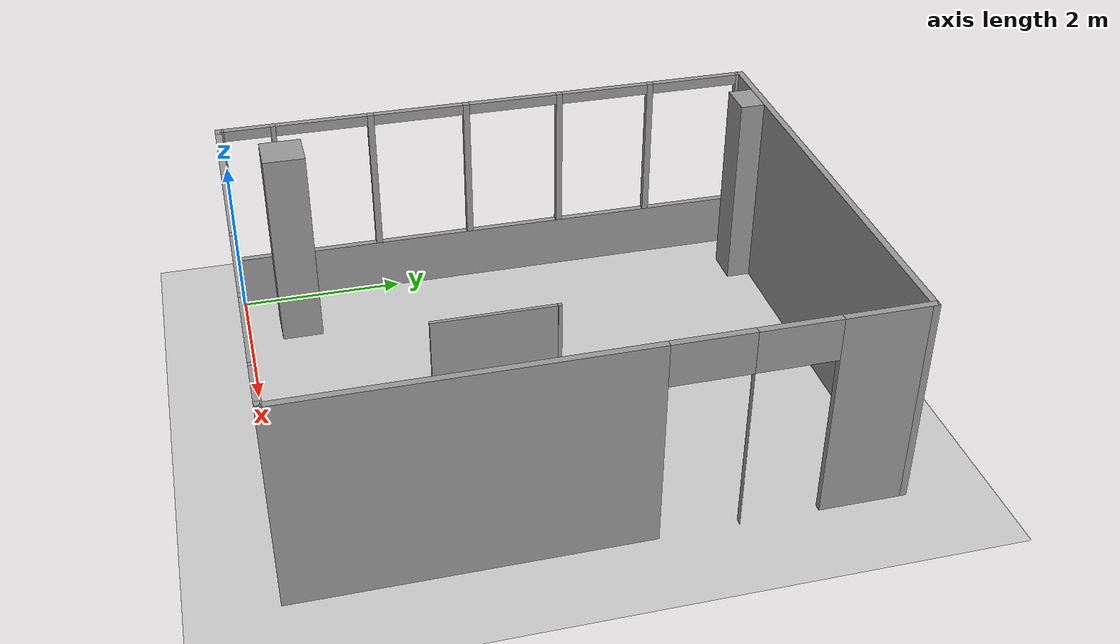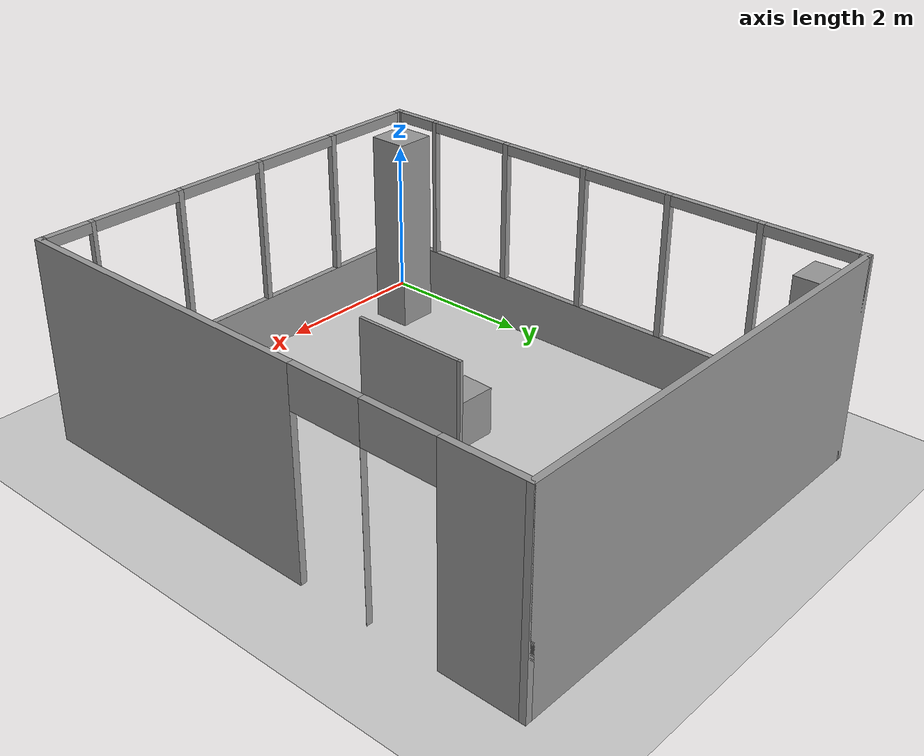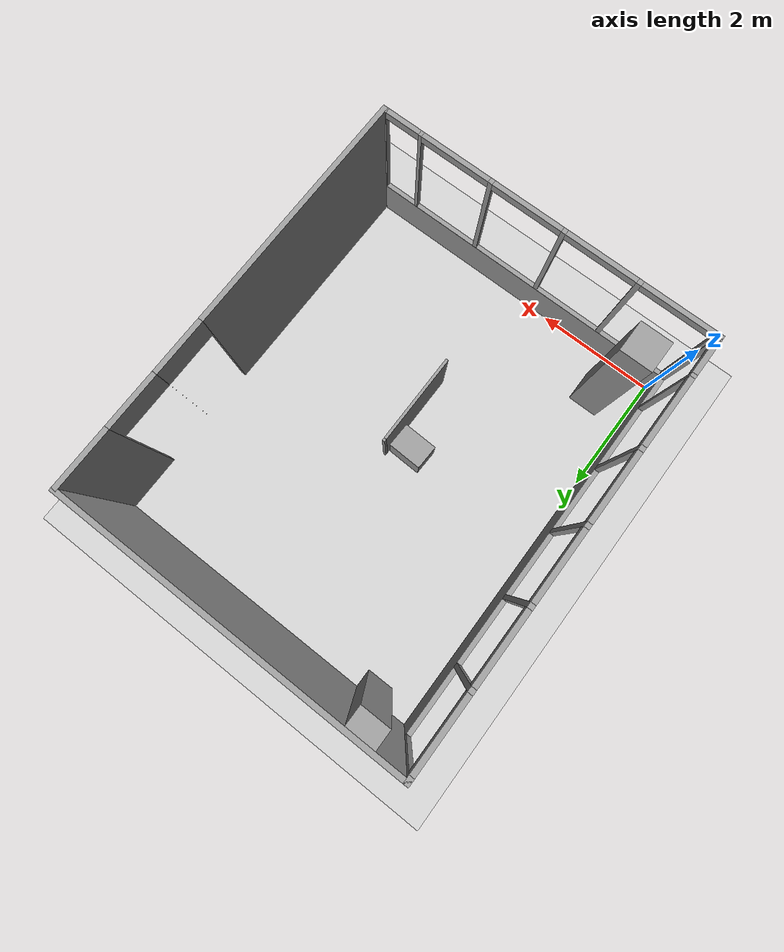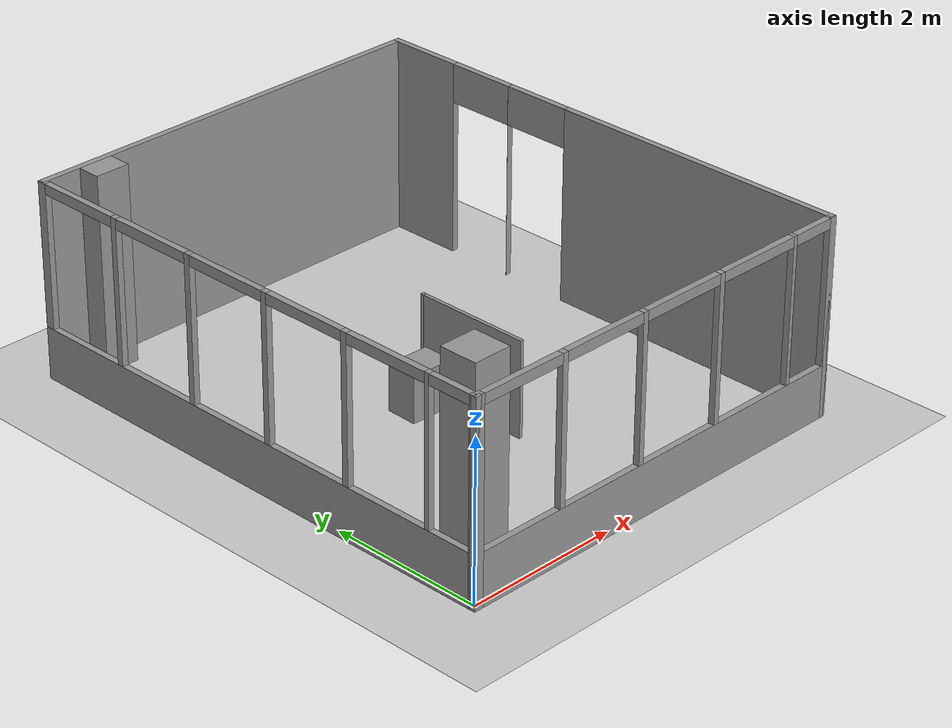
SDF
<sdf version="1.6">
 <world name="default">
  <model name="ground_plane">
   <static>1</static>
   <link name="link">
    <collision name="collision">
     <geometry><plane><normal>0 0 1</normal><size>100 100</size></plane></geometry>
     <surface><friction><ode><mu>100</mu><mu2>50</mu2></ode></friction></surface>
    </collision>
    <visual name="visual">
     <cast_shadows>0</cast_shadows>
     <geometry><plane><normal>0 0 1</normal><size>100 100</size></plane></geometry>
     <material>
      <script><uri>file://media/materials/scripts/gazebo.material</uri><name>Gazebo/Grey</name></script>
     </material>
    </visual>
   </link>
  </model>
  <model name="L8401_room">
   <pose>2.69658 3.29747 0 0 -0 0</pose>
   <link name="Wall_10">
    <pose>2.74 0 0 0 -0 1.5708</pose>
    <visual name="Wall_10_Visual_0">
     <pose>-1.41 0 1.25 0 -0 0</pose>
     <geometry><box><size>3.94 0.08 2.5</size></box></geometry>
     <material>
      <script><uri>file://media/materials/scripts/gazebo.material</uri><name>Gazebo/Grey</name></script>
      <ambient>1 1 1 1</ambient>
     </material>
    </visual>
    <collision name="Wall_10_Collision_0">
     <geometry><box><size>3.94 0.08 2.5</size></box></geometry>
     <pose>-1.41 0 1.25 0 -0 0</pose>
    </collision>
    <visual name="Wall_10_Visual_1">
     <pose>1.46 0 1.25 0 -0 0</pose>
     <geometry><box><size>0.001 0.08 2.5</size></box></geometry>
     <material>
      <script><uri>file://media/materials/scripts/gazebo.material</uri><name>Gazebo/Grey</name></script>
      <ambient>1 1 1 1</ambient>
     </material>
    </visual>
    <collision name="Wall_10_Collision_1">
     <geometry><box><size>0.001 0.08 2.5</size></box></geometry>
     <pose>1.46 0 1.25 0 -0 0</pose>
    </collision>
    <visual name="Wall_10_Visual_2">
     <pose>2.87 0 1.25 0 -0 0</pose>
     <geometry><box><size>1.02 0.08 2.5</size></box></geometry>
     <material>
      <script><uri>file://media/materials/scripts/gazebo.material</uri><name>Gazebo/Grey</name></script>
      <ambient>1 1 1 1</ambient>
     </material>
    </visual>
    <collision name="Wall_10_Collision_2">
     <geometry><box><size>1.02 0.08 2.5</size></box></geometry>
     <pose>2.87 0 1.25 0 -0 0</pose>
    </collision>
    <visual name="Wall_10_Visual_3">
     <pose>1.01 0 2.25 0 -0 0</pose>
     <geometry><box><size>0.9 0.08 0.5</size></box></geometry>
     <material>
      <script><uri>file://media/materials/scripts/gazebo.material</uri><name>Gazebo/Grey</name></script>
      <ambient>1 1 1 1</ambient>
     </material>
    </visual>
    <collision name="Wall_10_Collision_3">
     <geometry><box><size>0.9 0.08 0.5</size></box></geometry>
     <pose>1.01 0 2.25 0 -0 0</pose>
    </collision>
    <visual name="Wall_10_Visual_4">
     <pose>1.91 0 2.25 0 -0 0</pose>
     <geometry><box><size>0.9 0.08 0.5</size></box></geometry>
     <material>
      <script><uri>file://media/materials/scripts/gazebo.material</uri><name>Gazebo/Grey</name></script>
      <ambient>1 1 1 1</ambient>
     </material>
    </visual>
    <collision name="Wall_10_Collision_4">
     <geometry><box><size>0.9 0.08 0.5</size></box></geometry>
     <pose>1.91 0 2.25 0 -0 0</pose>
    </collision>
   </link>
   <link name="Wall_12">
    <collision name="Wall_12_Collision">
     <geometry><box><size>5.56 0.08 2.5</size></box></geometry>
     <pose>0 0 1.25 0 -0 0</pose>
    </collision>
    <visual name="Wall_12_Visual">
     <pose>0 0 1.25 0 -0 0</pose>
     <geometry><box><size>5.56 0.08 2.5</size></box></geometry>
     <material>
      <script><uri>file://media/materials/scripts/gazebo.material</uri><name>Gazebo/Grey</name></script>
      <ambient>1 1 1 1</ambient>
     </material>
    </visual>
    <pose>0 3.34 0 0 -0 0</pose>
   </link>
   <link name="Wall_22">
    <collision name="Wall_22_Collision">
     <geometry><box><size>0.5 0.5 2.5</size></box></geometry>
     <pose>0 0 1.25 0 -0 0</pose>
    </collision>
    <visual name="Wall_22_Visual">
     <pose>0 0 1.25 0 -0 0</pose>
     <geometry><box><size>0.5 0.5 2.5</size></box></geometry>
     <material>
      <script><uri>file://media/materials/scripts/gazebo.material</uri><name>Gazebo/Grey</name></script>
      <ambient>1 1 1 1</ambient>
     </material>
    </visual>
    <pose>-2.05 -2.65 0 0 -0 0</pose>
   </link>
   <link name="Wall_24">
    <collision name="Wall_24_Collision">
     <geometry><box><size>0.45 0.3 2.5</size></box></geometry>
     <pose>0 0 1.25 0 -0 0</pose>
    </collision>
    <visual name="Wall_24_Visual">
     <pose>0 0 1.25 0 -0 0</pose>
     <geometry><box><size>0.45 0.3 2.5</size></box></geometry>
     <material>
      <script><uri>file://media/materials/scripts/gazebo.material</uri><name>Gazebo/Grey</name></script>
      <ambient>1 1 1 1</ambient>
     </material>
    </visual>
    <pose>-2.025 3.15 0 0 -0 0</pose>
   </link>
   <link name="Wall_4">
    <pose>0 -3.34 0 0 -0 0</pose>
    <visual name="Wall_4_Visual_0">
     <pose>-2.72 0 1.25 0 -0 0</pose>
     <geometry><box><size>0.12 0.08 2.5</size></box></geometry>
     <material>
      <script><uri>file://media/materials/scripts/gazebo.material</uri><name>Gazebo/Grey</name></script>
      <ambient>1 1 1 1</ambient>
     </material>
    </visual>
    <collision name="Wall_4_Collision_0">
     <geometry><box><size>0.12 0.08 2.5</size></box></geometry>
     <pose>-2.72 0 1.25 0 -0 0</pose>
    </collision>
    <visual name="Wall_4_Visual_1">
     <pose>0.06 0 0.335 0 -0 0</pose>
     <geometry><box><size>5.44 0.08 0.67</size></box></geometry>
     <material>
      <script><uri>file://media/materials/scripts/gazebo.material</uri><name>Gazebo/Grey</name></script>
      <ambient>1 1 1 1</ambient>
     </material>
    </visual>
    <collision name="Wall_4_Collision_1">
     <geometry><box><size>5.44 0.08 0.67</size></box></geometry>
     <pose>0.06 0 0.335 0 -0 0</pose>
    </collision>
    <visual name="Wall_4_Visual_2">
     <pose>-1.5025 0 1.585 0 -0 0</pose>
     <geometry><box><size>0.075 0.08 1.83</size></box></geometry>
     <material>
      <script><uri>file://media/materials/scripts/gazebo.material</uri><name>Gazebo/Grey</name></script>
      <ambient>1 1 1 1</ambient>
     </material>
    </visual>
    <collision name="Wall_4_Collision_2">
     <geometry><box><size>0.075 0.08 1.83</size></box></geometry>
     <pose>-1.5025 0 1.585 0 -0 0</pose>
    </collision>
    <visual name="Wall_4_Visual_3">
     <pose>-0.3 0 1.585 0 -0 0</pose>
     <geometry><box><size>0.07 0.08 1.83</size></box></geometry>
     <material>
      <script><uri>file://media/materials/scripts/gazebo.material</uri><name>Gazebo/Grey</name></script>
      <ambient>1 1 1 1</ambient>
     </material>
    </visual>
    <collision name="Wall_4_Collision_3">
     <geometry><box><size>0.07 0.08 1.83</size></box></geometry>
     <pose>-0.3 0 1.585 0 -0 0</pose>
    </collision>
    <visual name="Wall_4_Visual_4">
     <pose>0.900568 0 1.585 0 -0 0</pose>
     <geometry><box><size>0.071135 0.08 1.83</size></box></geometry>
     <material>
      <script><uri>file://media/materials/scripts/gazebo.material</uri><name>Gazebo/Grey</name></script>
      <ambient>1 1 1 1</ambient>
     </material>
    </visual>
    <collision name="Wall_4_Collision_4">
     <geometry><box><size>0.071135 0.08 1.83</size></box></geometry>
     <pose>0.900568 0 1.585 0 -0 0</pose>
    </collision>
    <visual name="Wall_4_Visual_5">
     <pose>2.09307 0 1.585 0 -0 0</pose>
     <geometry><box><size>0.053865 0.08 1.83</size></box></geometry>
     <material>
      <script><uri>file://media/materials/scripts/gazebo.material</uri><name>Gazebo/Grey</name></script>
      <ambient>1 1 1 1</ambient>
     </material>
    </visual>
    <collision name="Wall_4_Collision_5">
     <geometry><box><size>0.053865 0.08 1.83</size></box></geometry>
     <pose>2.09307 0 1.585 0 -0 0</pose>
    </collision>
    <visual name="Wall_4_Visual_6">
     <pose>2.73 0 1.585 0 -0 0</pose>
     <geometry><box><size>0.1 0.08 1.83</size></box></geometry>
     <material>
      <script><uri>file://media/materials/scripts/gazebo.material</uri><name>Gazebo/Grey</name></script>
      <ambient>1 1 1 1</ambient>
     </material>
    </visual>
    <collision name="Wall_4_Collision_6">
     <geometry><box><size>0.1 0.08 1.83</size></box></geometry>
     <pose>2.73 0 1.585 0 -0 0</pose>
    </collision>
    <visual name="Wall_4_Visual_7">
     <pose>-0.9 0 0.67 0 -0 0</pose>
     <geometry><box><size>1.13 0.08 0.001</size></box></geometry>
     <material>
      <script><uri>file://media/materials/scripts/gazebo.material</uri><name>Gazebo/Grey</name></script>
      <ambient>1 1 1 1</ambient>
     </material>
    </visual>
    <collision name="Wall_4_Collision_7">
     <geometry><box><size>1.13 0.08 0.001</size></box></geometry>
     <pose>-0.9 0 0.67 0 -0 0</pose>
    </collision>
    <visual name="Wall_4_Visual_8">
     <pose>0.3 0 0.67 0 -0 0</pose>
     <geometry><box><size>1.13 0.08 0.001</size></box></geometry>
     <material>
      <script><uri>file://media/materials/scripts/gazebo.material</uri><name>Gazebo/Grey</name></script>
      <ambient>1 1 1 1</ambient>
     </material>
    </visual>
    <collision name="Wall_4_Collision_8">
     <geometry><box><size>1.13 0.08 0.001</size></box></geometry>
     <pose>0.3 0 0.67 0 -0 0</pose>
    </collision>
    <visual name="Wall_4_Visual_9">
     <pose>1.50114 0 0.67 0 -0 0</pose>
     <geometry><box><size>1.13 0.08 0.001</size></box></geometry>
     <material>
      <script><uri>file://media/materials/scripts/gazebo.material</uri><name>Gazebo/Grey</name></script>
      <ambient>1 1 1 1</ambient>
     </material>
    </visual>
    <collision name="Wall_4_Collision_9">
     <geometry><box><size>1.13 0.08 0.001</size></box></geometry>
     <pose>1.50114 0 0.67 0 -0 0</pose>
    </collision>
    <visual name="Wall_4_Visual_10">
     <pose>2.4 0 0.67 0 -0 0</pose>
     <geometry><box><size>0.56 0.08 0.001</size></box></geometry>
     <material>
      <script><uri>file://media/materials/scripts/gazebo.material</uri><name>Gazebo/Grey</name></script>
      <ambient>1 1 1 1</ambient>
     </material>
    </visual>
    <collision name="Wall_4_Collision_10">
     <geometry><box><size>0.56 0.08 0.001</size></box></geometry>
     <pose>2.4 0 0.67 0 -0 0</pose>
    </collision>
    <visual name="Wall_4_Visual_11">
     <pose>-2.1 0 2.435 0 -0 0</pose>
     <geometry><box><size>1.12 0.08 0.13</size></box></geometry>
     <material>
      <script><uri>file://media/materials/scripts/gazebo.material</uri><name>Gazebo/Grey</name></script>
      <ambient>1 1 1 1</ambient>
     </material>
    </visual>
    <collision name="Wall_4_Collision_11">
     <geometry><box><size>1.12 0.08 0.13</size></box></geometry>
     <pose>-2.1 0 2.435 0 -0 0</pose>
    </collision>
    <visual name="Wall_4_Visual_12">
     <pose>-0.9 0 2.435 0 -0 0</pose>
     <geometry><box><size>1.13 0.08 0.13</size></box></geometry>
     <material>
      <script><uri>file://media/materials/scripts/gazebo.material</uri><name>Gazebo/Grey</name></script>
      <ambient>1 1 1 1</ambient>
     </material>
    </visual>
    <collision name="Wall_4_Collision_12">
     <geometry><box><size>1.13 0.08 0.13</size></box></geometry>
     <pose>-0.9 0 2.435 0 -0 0</pose>
    </collision>
    <visual name="Wall_4_Visual_13">
     <pose>0.3 0 2.435 0 -0 0</pose>
     <geometry><box><size>1.13 0.08 0.13</size></box></geometry>
     <material>
      <script><uri>file://media/materials/scripts/gazebo.material</uri><name>Gazebo/Grey</name></script>
      <ambient>1 1 1 1</ambient>
     </material>
    </visual>
    <collision name="Wall_4_Collision_13">
     <geometry><box><size>1.13 0.08 0.13</size></box></geometry>
     <pose>0.3 0 2.435 0 -0 0</pose>
    </collision>
    <visual name="Wall_4_Visual_14">
     <pose>1.50114 0 2.435 0 -0 0</pose>
     <geometry><box><size>1.13 0.08 0.13</size></box></geometry>
     <material>
      <script><uri>file://media/materials/scripts/gazebo.material</uri><name>Gazebo/Grey</name></script>
      <ambient>1 1 1 1</ambient>
     </material>
    </visual>
    <collision name="Wall_4_Collision_14">
     <geometry><box><size>1.13 0.08 0.13</size></box></geometry>
     <pose>1.50114 0 2.435 0 -0 0</pose>
    </collision>
    <visual name="Wall_4_Visual_15">
     <pose>2.4 0 2.435 0 -0 0</pose>
     <geometry><box><size>0.56 0.08 0.13</size></box></geometry>
     <material>
      <script><uri>file://media/materials/scripts/gazebo.material</uri><name>Gazebo/Grey</name></script>
      <ambient>1 1 1 1</ambient>
     </material>
    </visual>
    <collision name="Wall_4_Collision_15">
     <geometry><box><size>0.56 0.08 0.13</size></box></geometry>
     <pose>2.4 0 2.435 0 -0 0</pose>
    </collision>
   </link>
   <link name="Wall_6">
    <pose>-2.74 0 0 0 -0 1.5708</pose>
    <visual name="Wall_6_Visual_0">
     <pose>-3.33 0 1.25 0 -0 0</pose>
     <geometry><box><size>0.1 0.08 2.5</size></box></geometry>
     <material>
      <script><uri>file://media/materials/scripts/gazebo.material</uri><name>Gazebo/Grey</name></script>
      <ambient>1 1 1 1</ambient>
     </material>
    </visual>
    <collision name="Wall_6_Collision_0">
     <geometry><box><size>0.1 0.08 2.5</size></box></geometry>
     <pose>-3.33 0 1.25 0 -0 0</pose>
    </collision>
    <visual name="Wall_6_Visual_1">
     <pose>0.05 0 0.335 0 -0 0</pose>
     <geometry><box><size>6.66 0.08 0.67</size></box></geometry>
     <material>
      <script><uri>file://media/materials/scripts/gazebo.material</uri><name>Gazebo/Grey</name></script>
      <ambient>1 1 1 1</ambient>
     </material>
    </visual>
    <collision name="Wall_6_Collision_1">
     <geometry><box><size>6.66 0.08 0.67</size></box></geometry>
     <pose>0.05 0 0.335 0 -0 0</pose>
    </collision>
    <visual name="Wall_6_Visual_2">
     <pose>-2.69 0 1.585 0 -0 0</pose>
     <geometry><box><size>0.06 0.08 1.83</size></box></geometry>
     <material>
      <script><uri>file://media/materials/scripts/gazebo.material</uri><name>Gazebo/Grey</name></script>
      <ambient>1 1 1 1</ambient>
     </material>
    </visual>
    <collision name="Wall_6_Collision_2">
     <geometry><box><size>0.06 0.08 1.83</size></box></geometry>
     <pose>-2.69 0 1.585 0 -0 0</pose>
    </collision>
    <visual name="Wall_6_Visual_3">
     <pose>-1.5 0 1.585 0 -0 0</pose>
     <geometry><box><size>0.08 0.08 1.83</size></box></geometry>
     <material>
      <script><uri>file://media/materials/scripts/gazebo.material</uri><name>Gazebo/Grey</name></script>
      <ambient>1 1 1 1</ambient>
     </material>
    </visual>
    <collision name="Wall_6_Collision_3">
     <geometry><box><size>0.08 0.08 1.83</size></box></geometry>
     <pose>-1.5 0 1.585 0 -0 0</pose>
    </collision>
    <visual name="Wall_6_Visual_4">
     <pose>-0.3 0 1.585 0 -0 0</pose>
     <geometry><box><size>0.08 0.08 1.83</size></box></geometry>
     <material>
      <script><uri>file://media/materials/scripts/gazebo.material</uri><name>Gazebo/Grey</name></script>
      <ambient>1 1 1 1</ambient>
     </material>
    </visual>
    <collision name="Wall_6_Collision_4">
     <geometry><box><size>0.08 0.08 1.83</size></box></geometry>
     <pose>-0.3 0 1.585 0 -0 0</pose>
    </collision>
    <visual name="Wall_6_Visual_5">
     <pose>0.9 0 1.585 0 -0 0</pose>
     <geometry><box><size>0.08 0.08 1.83</size></box></geometry>
     <material>
      <script><uri>file://media/materials/scripts/gazebo.material</uri><name>Gazebo/Grey</name></script>
      <ambient>1 1 1 1</ambient>
     </material>
    </visual>
    <collision name="Wall_6_Collision_5">
     <geometry><box><size>0.08 0.08 1.83</size></box></geometry>
     <pose>0.9 0 1.585 0 -0 0</pose>
    </collision>
    <visual name="Wall_6_Visual_6">
     <pose>2.1 0 1.585 0 -0 0</pose>
     <geometry><box><size>0.08 0.08 1.83</size></box></geometry>
     <material>
      <script><uri>file://media/materials/scripts/gazebo.material</uri><name>Gazebo/Grey</name></script>
      <ambient>1 1 1 1</ambient>
     </material>
    </visual>
    <collision name="Wall_6_Collision_6">
     <geometry><box><size>0.08 0.08 1.83</size></box></geometry>
     <pose>2.1 0 1.585 0 -0 0</pose>
    </collision>
    <visual name="Wall_6_Visual_7">
     <pose>3.32 0 1.585 0 -0 0</pose>
     <geometry><box><size>0.12 0.08 1.83</size></box></geometry>
     <material>
      <script><uri>file://media/materials/scripts/gazebo.material</uri><name>Gazebo/Grey</name></script>
      <ambient>1 1 1 1</ambient>
     </material>
    </visual>
    <collision name="Wall_6_Collision_7">
     <geometry><box><size>0.12 0.08 1.83</size></box></geometry>
     <pose>3.32 0 1.585 0 -0 0</pose>
    </collision>
    <visual name="Wall_6_Visual_8">
     <pose>-3 0 2.435 0 -0 0</pose>
     <geometry><box><size>0.56 0.08 0.13</size></box></geometry>
     <material>
      <script><uri>file://media/materials/scripts/gazebo.material</uri><name>Gazebo/Grey</name></script>
      <ambient>1 1 1 1</ambient>
     </material>
    </visual>
    <collision name="Wall_6_Collision_8">
     <geometry><box><size>0.56 0.08 0.13</size></box></geometry>
     <pose>-3 0 2.435 0 -0 0</pose>
    </collision>
    <visual name="Wall_6_Visual_9">
     <pose>-2.1 0 2.435 0 -0 0</pose>
     <geometry><box><size>1.12 0.08 0.13</size></box></geometry>
     <material>
      <script><uri>file://media/materials/scripts/gazebo.material</uri><name>Gazebo/Grey</name></script>
      <ambient>1 1 1 1</ambient>
     </material>
    </visual>
    <collision name="Wall_6_Collision_9">
     <geometry><box><size>1.12 0.08 0.13</size></box></geometry>
     <pose>-2.1 0 2.435 0 -0 0</pose>
    </collision>
    <visual name="Wall_6_Visual_10">
     <pose>-0.9 0 2.435 0 -0 0</pose>
     <geometry><box><size>1.12 0.08 0.13</size></box></geometry>
     <material>
      <script><uri>file://media/materials/scripts/gazebo.material</uri><name>Gazebo/Grey</name></script>
      <ambient>1 1 1 1</ambient>
     </material>
    </visual>
    <collision name="Wall_6_Collision_10">
     <geometry><box><size>1.12 0.08 0.13</size></box></geometry>
     <pose>-0.9 0 2.435 0 -0 0</pose>
    </collision>
    <visual name="Wall_6_Visual_11">
     <pose>0.3 0 2.435 0 -0 0</pose>
     <geometry><box><size>1.12 0.08 0.13</size></box></geometry>
     <material>
      <script><uri>file://media/materials/scripts/gazebo.material</uri><name>Gazebo/Grey</name></script>
      <ambient>1 1 1 1</ambient>
     </material>
    </visual>
    <collision name="Wall_6_Collision_11">
     <geometry><box><size>1.12 0.08 0.13</size></box></geometry>
     <pose>0.3 0 2.435 0 -0 0</pose>
    </collision>
    <visual name="Wall_6_Visual_12">
     <pose>1.5 0 2.435 0 -0 0</pose>
     <geometry><box><size>1.12 0.08 0.13</size></box></geometry>
     <material>
      <script><uri>file://media/materials/scripts/gazebo.material</uri><name>Gazebo/Grey</name></script>
      <ambient>1 1 1 1</ambient>
     </material>
    </visual>
    <collision name="Wall_6_Collision_12">
     <geometry><box><size>1.12 0.08 0.13</size></box></geometry>
     <pose>1.5 0 2.435 0 -0 0</pose>
    </collision>
    <visual name="Wall_6_Visual_13">
     <pose>2.7 0 2.435 0 -0 0</pose>
     <geometry><box><size>1.12 0.08 0.13</size></box></geometry>
     <material>
      <script><uri>file://media/materials/scripts/gazebo.material</uri><name>Gazebo/Grey</name></script>
      <ambient>1 1 1 1</ambient>
     </material>
    </visual>
    <collision name="Wall_6_Collision_13">
     <geometry><box><size>1.12 0.08 0.13</size></box></geometry>
     <pose>2.7 0 2.435 0 -0 0</pose>
    </collision>
   </link>
   <static>1</static>
  </model>
  <model name="L8401_panel_B_0_clone">
   <link name="link_0">
    <pose>0 0 0 0 -0 1.57</pose>
    <inertial>
     <mass>1</mass>
     <inertia>
      <ixx>0.166667</ixx>
      <ixy>0</ixy>
      <ixz>0</ixz>
      <iyy>0.166667</iyy>
      <iyz>0</iyz>
      <izz>0.166667</izz>
     </inertia>
    </inertial>
    <visual name="visual">
     <geometry><box><size>1.5 0.045 1.23</size></box></geometry>
     <material>
      <lighting>1</lighting>
      <script><uri>file://media/materials/scripts/gazebo.material</uri><name>Gazebo/Grey</name></script>
      <ambient>0.3 0.3 0.3 1</ambient>
      <diffuse>0.7 0.7 0.7 1</diffuse>
      <specular>0.01 0.01 0.01 1</specular>
      <emissive>0 0 0 1</emissive>
      <shader type="vertex"><normal_map>__default__</normal_map></shader>
     </material>
    </visual>
    <collision name="collision">
     <geometry><box><size>1.5 0.045 1.23</size></box></geometry>
     <surface>
      <friction>
       <ode><mu>1</mu><mu2>1</mu2><fdir1>0 0 0</fdir1><slip1>0</slip1><slip2>0</slip2></ode>
       <torsional>
        <coefficient>1</coefficient>
        <patch_radius>0</patch_radius>
        <surface_radius>0</surface_radius>
        <use_patch_radius>1</use_patch_radius>
        <ode><slip>0</slip></ode>
       </torsional>
      </friction>
      <bounce><restitution_coefficient>0</restitution_coefficient><threshold>1e+06</threshold></bounce>
      <contact>
       <collide_without_contact>0</collide_without_contact>
       <collide_without_contact_bitmask>1</collide_without_contact_bitmask>
       <collide_bitmask>1</collide_bitmask>
       <ode>
        <soft_cfm>0</soft_cfm>
        <soft_erp>0.2</soft_erp>
        <kp>1e+13</kp>
        <kd>1</kd>
        <max_vel>0.01</max_vel>
        <min_depth>0</min_depth>
       </ode>
       <bullet>
        <split_impulse>1</split_impulse>
        <split_impulse_penetration_threshold>-0.01</split_impulse_penetration_threshold>
        <soft_cfm>0</soft_cfm>
        <soft_erp>0.2</soft_erp>
        <kp>1e+13</kp>
        <kd>1</kd>
       </bullet>
      </contact>
     </surface>
    </collision>
   </link>
   <static>1</static>
   <pose>2.73802 2.7168 0.61499 -0 2e-06 -0.0022</pose>
  </model>
  <model name="L8401_panel_C_0">
   <link name="link_0">
    <inertial>
     <mass>1</mass>
     <inertia>
      <ixx>0.166667</ixx>
      <ixy>0</ixy>
      <ixz>0</ixz>
      <iyy>0.166667</iyy>
      <iyz>0</iyz>
      <izz>0.166667</izz>
     </inertia>
    </inertial>
    <visual name="visual">
     <geometry><box><size>0.045 0.045 1.23</size></box></geometry>
     <material>
      <lighting>1</lighting>
      <script><uri>file://media/materials/scripts/gazebo.material</uri><name>Gazebo/Grey</name></script>
      <ambient>0.3 0.3 0.3 1</ambient>
      <diffuse>0.7 0.7 0.7 1</diffuse>
      <specular>0.01 0.01 0.01 1</specular>
      <emissive>0 0 0 1</emissive>
      <shader type="vertex"><normal_map>__default__</normal_map></shader>
     </material>
    </visual>
    <collision name="collision">
     <geometry><box><size>0.045 0.045 1.23</size></box></geometry>
     <surface>
      <friction>
       <ode><mu>1</mu><mu2>1</mu2><fdir1>0 0 0</fdir1><slip1>0</slip1><slip2>0</slip2></ode>
       <torsional>
        <coefficient>1</coefficient>
        <patch_radius>0</patch_radius>
        <surface_radius>0</surface_radius>
        <use_patch_radius>1</use_patch_radius>
        <ode><slip>0</slip></ode>
       </torsional>
      </friction>
      <bounce><restitution_coefficient>0</restitution_coefficient><threshold>1e+06</threshold></bounce>
      <contact>
       <collide_without_contact>0</collide_without_contact>
       <collide_without_contact_bitmask>1</collide_without_contact_bitmask>
       <collide_bitmask>1</collide_bitmask>
       <ode>
        <soft_cfm>0</soft_cfm>
        <soft_erp>0.2</soft_erp>
        <kp>1e+13</kp>
        <kd>1</kd>
        <max_vel>0.01</max_vel>
        <min_depth>0</min_depth>
       </ode>
       <bullet>
        <split_impulse>1</split_impulse>
        <split_impulse_penetration_threshold>-0.01</split_impulse_penetration_threshold>
        <soft_cfm>0</soft_cfm>
        <soft_erp>0.2</soft_erp>
        <kp>1e+13</kp>
        <kd>1</kd>
       </bullet>
      </contact>
     </surface>
    </collision>
   </link>
   <static>1</static>
   <pose>2.73908 3.4926 0.615 -1.1e-05 -6e-06 9e-06</pose>
  </model>
  <model name="L8401_drawer_B">
   <link name="link">
    <inertial>
     <mass>1</mass>
     <inertia>
      <ixx>0.166667</ixx>
      <ixy>0</ixy>
      <ixz>0</ixz>
      <iyy>0.166667</iyy>
      <iyz>0</iyz>
      <izz>0.166667</izz>
     </inertia>
    </inertial>
    <visual name="visual">
     <geometry><box><size>0.57 0.41 0.6</size></box></geometry>
     <material>
      <script><name>Gazebo/Grey</name><uri>file://media/materials/scripts/gazebo.material</uri></script>
      <ambient>0.3 0.3 0.3 1</ambient>
      <diffuse>0.7 0.7 0.7 1</diffuse>
      <specular>0.01 0.01 0.01 1</specular>
      <emissive>0 0 0 1</emissive>
      <shader type="vertex"><normal_map>__default__</normal_map></shader>
     </material>
    </visual>
    <collision name="collision">
     <geometry><box><size>0.57 0.41 0.6</size></box></geometry>
     <surface>
      <friction>
       <ode><mu>1</mu><mu2>1</mu2><fdir1>0 0 0</fdir1><slip1>0</slip1><slip2>0</slip2></ode>
       <torsional>
        <coefficient>1</coefficient>
        <patch_radius>0</patch_radius>
        <surface_radius>0</surface_radius>
        <use_patch_radius>1</use_patch_radius>
        <ode><slip>0</slip></ode>
       </torsional>
      </friction>
      <bounce><restitution_coefficient>0</restitution_coefficient><threshold>1e+06</threshold></bounce>
      <contact>
       <collide_without_contact>0</collide_without_contact>
       <collide_without_contact_bitmask>1</collide_without_contact_bitmask>
       <collide_bitmask>1</collide_bitmask>
       <ode>
        <soft_cfm>0</soft_cfm>
        <soft_erp>0.2</soft_erp>
        <kp>1e+13</kp>
        <kd>1</kd>
        <max_vel>0.01</max_vel>
        <min_depth>0</min_depth>
       </ode>
       <bullet>
        <split_impulse>1</split_impulse>
        <split_impulse_penetration_threshold>-0.01</split_impulse_penetration_threshold>
        <soft_cfm>0</soft_cfm>
        <soft_erp>0.2</soft_erp>
        <kp>1e+13</kp>
        <kd>1</kd>
       </bullet>
      </contact>
     </surface>
    </collision>
   </link>
   <static>1</static>
   <pose>2.41173 3.21702 0.298083 -2e-06 -3e-06 -0.032619</pose>
  </model>
 </world>
</sdf>
